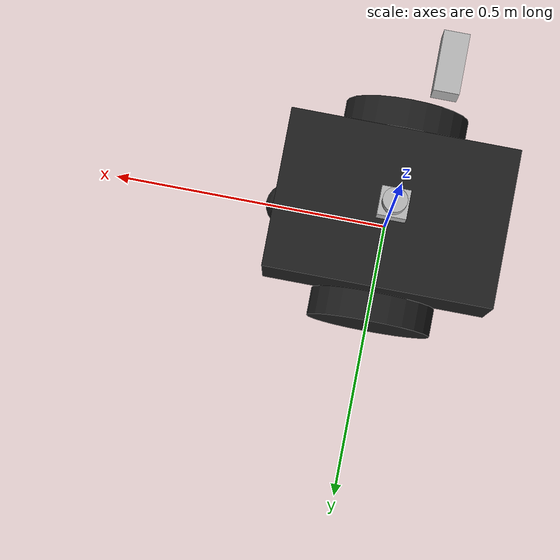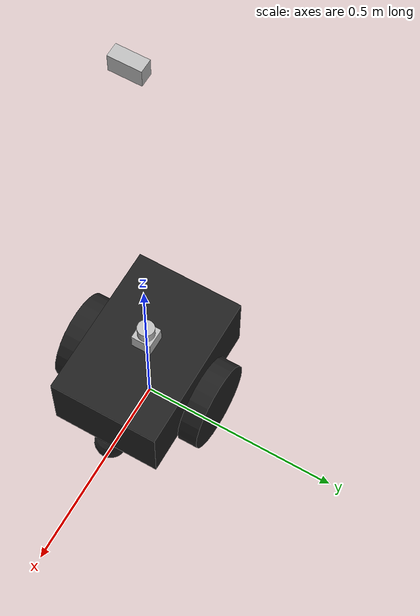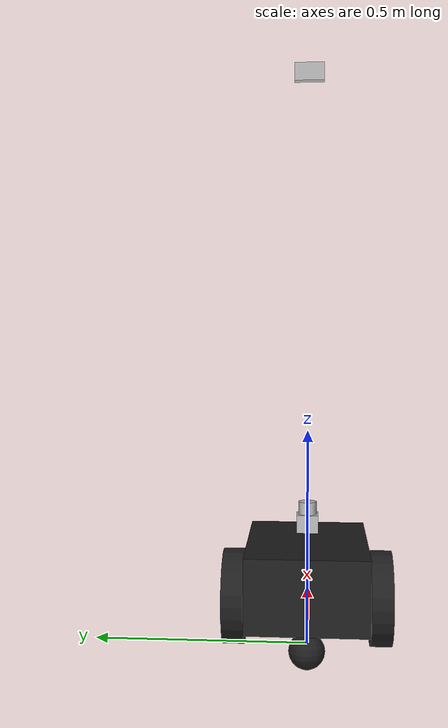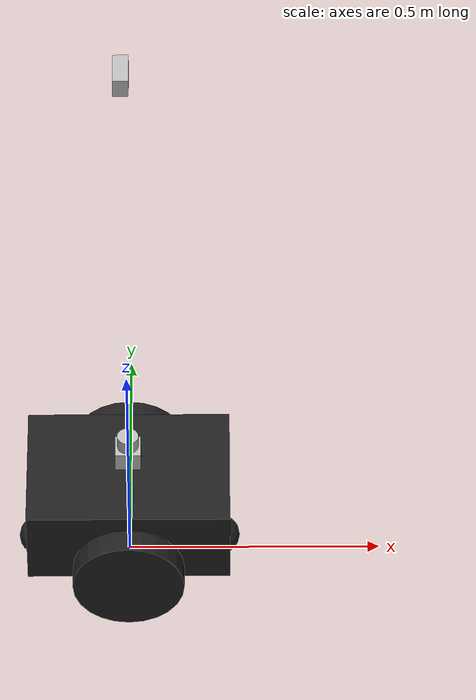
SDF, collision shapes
<sdf version='1.6'>
  <model name='pioneer2dx'>
    <link name='chassis'>
      <pose frame=''>0 0 0.16 0 -0 0</pose>
      <inertial>
        <mass>5.67</mass>
        <inertia>
          <ixx>0.07</ixx>
          <iyy>0.08</iyy>
          <izz>0.1</izz>
          <ixy>0</ixy>
          <ixz>0</ixz>
          <iyz>0</iyz>
        </inertia>
      </inertial>
      <collision name='collision'>
        <geometry>
          <box>
            <size>0.40 0.277 0.17</size>
          </box>
        </geometry>
      </collision>
      <collision name='castor2_collision'>
        <pose frame=''>0.18 0 -0.12 0 -0 0</pose>
        <geometry>
          <sphere>
            <radius>0.04</radius>
          </sphere>
        </geometry>
        <surface>
          <friction>
            <ode>
              <mu>0</mu>
              <mu2>0</mu2>
              <slip1>1</slip1>
              <slip2>1</slip2>
            </ode>
          </friction>
        </surface>
      </collision>
      <collision name='castor_collision'>
        <pose frame=''>-0.18 0 -0.12 0 -0 0</pose>
        <geometry>
          <sphere>
            <radius>0.04</radius>
          </sphere>
        </geometry>
        <surface>
          <friction>
            <ode>
              <mu>0</mu>
              <mu2>0</mu2>
              <slip1>1</slip1>
              <slip2>1</slip2>
            </ode>
          </friction>
        </surface>
      </collision>
      <visual name='visual'>
        <pose frame=''>0 0 0.04 0 -0 0</pose>
        <geometry>
          <mesh>
            <uri>model://pioneer2dx/meshes/chassis.dae</uri>
          </mesh>
        </geometry>
      </visual>
      <visual name='castor2_visual'>
        <pose frame=''>0.18 0 -0.12 0 -0 0</pose>
        <geometry>
          <sphere>
            <radius>0.04</radius>
          </sphere>
        </geometry>
        <material>
          <script>
            <uri>file://media/materials/scripts/gazebo.material</uri>
            <name>Gazebo/FlatBlack</name>
          </script>
        </material>
      </visual>
      <visual name='castor_visual'>
        <pose frame=''>-0.18 0 -0.12 0 -0 0</pose>
        <geometry>
          <sphere>
            <radius>0.04</radius>
          </sphere>
        </geometry>
        <material>
          <script>
            <uri>file://media/materials/scripts/gazebo.material</uri>
            <name>Gazebo/FlatBlack</name>
          </script>
        </material>
      </visual>
    </link>
    <link name='right_wheel'>
      <pose frame=''>0.0 -0.17 0.11 -0 1.5707 1.5707</pose>
      <inertial>
        <mass>1.5</mass>
        <inertia>
          <ixx>0.0051</ixx>
          <iyy>0.0051</iyy>
          <izz>0.009</izz>
          <ixy>0</ixy>
          <ixz>0</ixz>
          <iyz>0</iyz>
        </inertia>
      </inertial>
      <collision name='collision'>
        <geometry>
          <cylinder>
            <radius>0.11</radius>
            <length>0.05</length>
          </cylinder>
        </geometry>
        <surface>
          <friction>
            <ode>
              <mu>0</mu>
              <mu2>0</mu2>
              <slip1>1</slip1>
              <slip2>1</slip2>
            </ode>
          </friction>
        </surface>
      </collision>
      <visual name='visual'>
        <geometry>
          <cylinder>
            <radius>0.11</radius>
            <length>0.05</length>
          </cylinder>
        </geometry>
        <material>
          <script>
            <uri>file://media/materials/scripts/gazebo.material</uri>
            <name>Gazebo/FlatBlack</name>
          </script>
        </material>
      </visual>
    </link>
    <link name='left_wheel'>
      <pose frame=''>0.0 0.17 0.11 -0 1.5707 1.5707</pose>
      <inertial>
        <mass>1.5</mass>
        <inertia>
          <ixx>0.0051</ixx>
          <iyy>0.0051</iyy>
          <izz>0.009</izz>
          <ixy>0</ixy>
          <ixz>0</ixz>
          <iyz>0</iyz>
        </inertia>
      </inertial>
      <collision name='collision'>
        <geometry>
          <cylinder>
            <radius>0.11</radius>
            <length>0.05</length>
          </cylinder>
        </geometry>
        <surface>
          <friction>
            <ode>
              <mu>0</mu>
              <mu2>0</mu2>
              <slip1>1</slip1>
              <slip2>1</slip2>
            </ode>
          </friction>
        </surface>
      </collision>
      <visual name='visual'>
        <geometry>
          <cylinder>
            <radius>0.11</radius>
            <length>0.05</length>
          </cylinder>
        </geometry>
        <material>
          <script>
            <uri>file://media/materials/scripts/gazebo.material</uri>
            <name>Gazebo/FlatBlack</name>
          </script>
        </material>
      </visual>
    </link>
    <link name='webcam'>
      <pose frame=''>0 0 1.32 0 -0 0</pose>
      <inertial>
        <mass>0.1</mass>
        <inertia>
          <ixx>0.07</ixx>
          <iyy>0.08</iyy>
          <izz>0.1</izz>
          <ixy>0</ixy>
          <ixz>0</ixz>
          <iyz>0</iyz>
        </inertia>
      </inertial>
      <collision name='collision'>
        <geometry>
          <box>
            <size>0.029 0.068 0.04</size>
          </box>
        </geometry>
      </collision>
      <visual name='visual'>
        <geometry>
          <box>
            <size>0.029 0.068 0.04</size>
          </box>
        </geometry>
      </visual>
      <sensor name='camera' type='camera'>
        <camera name='__default__'>
          <horizontal_fov>1.047</horizontal_fov>
          <image>
            <width>320</width>
            <height>240</height>
	    <format>R8G8B8</format>
          </image>
          <clip>
            <near>0.1</near>
            <far>100</far>
          </clip>
        </camera>
        <always_on>1</always_on>
        <update_rate>30</update_rate>
        <visualize>0</visualize>
        <plugin name='camera_controller' filename='libgazebo_ros_camera.so'>
          <alwaysOn>true</alwaysOn>
          <updateRate>30.0</updateRate>
          <cameraName>sudo/bottom_webcam</cameraName>
          <imageTopicName>image_raw</imageTopicName>
          <cameraInfoTopicName>camera_info</cameraInfoTopicName>
          <frameName>webcam_link</frameName>
        </plugin>
      </sensor>
    </link>
    <link name='sick_laser'>
      <pose frame=''>0 0 0.3 0 -0 3.14</pose>
      <inertial>
        <mass>0.1</mass>
        <inertia>
          <ixx>0.07</ixx>
          <iyy>0.08</iyy>
          <izz>0.1</izz>
          <ixy>0</ixy>
          <ixz>0</ixz>
          <iyz>0</iyz>
        </inertia>
      </inertial>
      <visual name='visual'>
        <geometry>
          <mesh>
            <uri>model://hokuyo/meshes/hokuyo.dae</uri>
          </mesh>
        </geometry>
      </visual>
      <collision name='collision-base'>
        <pose frame=''>0 0 -0.0145 0 -0 0</pose>
        <geometry>
          <box>
            <size>0.05 0.05 0.041</size>
          </box>
        </geometry>
      </collision>
      <collision name='collision-top'>
        <pose frame=''>0 0 0.0205 0 -0 0</pose>
        <geometry>
          <cylinder>
            <radius>0.021</radius>
            <length>0.029</length>
          </cylinder>
        </geometry>
      </collision>
      <sensor name='head_hokuyo_sensor' type='gpu_ray'>
        <pose frame=''>0 0 0 0 -0 0</pose>
        <visualize>0</visualize>
        <update_rate>30</update_rate>
        <ray>
          <scan>
            <horizontal>
              <samples>180</samples>
              <resolution>1</resolution>
              <min_angle>-3.14</min_angle>
              <max_angle>3.14</max_angle>
            </horizontal>
          </scan>
          <range>
            <min>0.1</min>
            <max>10</max>
            <resolution>0.01</resolution>
          </range>
          <noise>
            <type>gaussian</type>
            <mean>0</mean>
            <stddev>0.00001</stddev>
          </noise>
        </ray>
        <plugin name='gazebo_ros_head_hokuyo_controller' filename='libgazebo_ros_gpu_laser.so'>
          <topicName>/sudo/laser/scan</topicName>
          <frameName>laser_link</frameName>
        </plugin>
      </sensor>
    </link>
    <joint name='left_wheel_hinge' type='revolute'>
      <pose frame=''>0 0 -0.03 0 -0 0</pose>
      <child>left_wheel</child>
      <parent>chassis</parent>
      <axis>
        <xyz>0 1 0</xyz>
        <use_parent_model_frame>1</use_parent_model_frame>
        <limit>
          <lower>-1e+16</lower>
          <upper>1e+16</upper>
        </limit>
      </axis>
    </joint>
    <joint name='right_wheel_hinge' type='revolute'>
      <pose frame=''>0 0 0.03 0 -0 0</pose>
      <child>right_wheel</child>
      <parent>chassis</parent>
      <axis>
        <xyz>0 1 0</xyz>
        <use_parent_model_frame>1</use_parent_model_frame>
        <limit>
          <lower>-1e+16</lower>
          <upper>1e+16</upper>
        </limit>
      </axis>
    </joint>
    <joint name='webcam_joint' type='fixed'>
      <pose frame=''>0 0 1.32 0 -0 0</pose>
      <child>webcam</child>
      <parent>chassis</parent>
      <axis>
        <xyz>0 1 0</xyz>
        <use_parent_model_frame>1</use_parent_model_frame>
        <limit>
          <lower>0</lower>
          <upper>0</upper>
        </limit>
      </axis>
    </joint>
    <joint name='laser_joint' type='fixed'>
      <pose frame=''>0 0 0 0.0 -0 0</pose>
      <child>sick_laser</child>
      <parent>chassis</parent>
      <axis>
        <xyz>0 1 0</xyz>
        <use_parent_model_frame>1</use_parent_model_frame>
        <limit>
          <lower>0</lower>
          <upper>0</upper>
        </limit>
      </axis>
    </joint>
    <plugin name="object_controller" filename="libgazebo_ros_planar_move.so">
      <commandTopic>cmd_vel</commandTopic>
      <odometryTopic>odom</odometryTopic>
      <odometryFrame>odom</odometryFrame>
      <odometryRate>20.0</odometryRate>
      <robotBaseFrame>base_link</robotBaseFrame>
    </plugin>
  </model>
</sdf>
